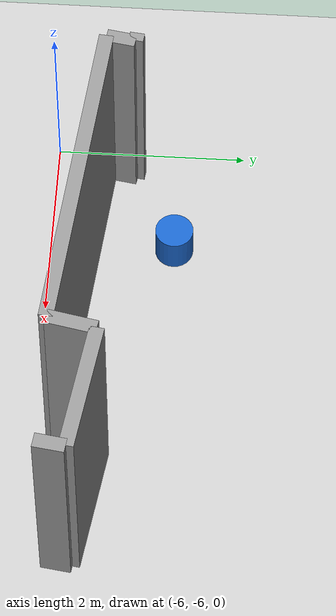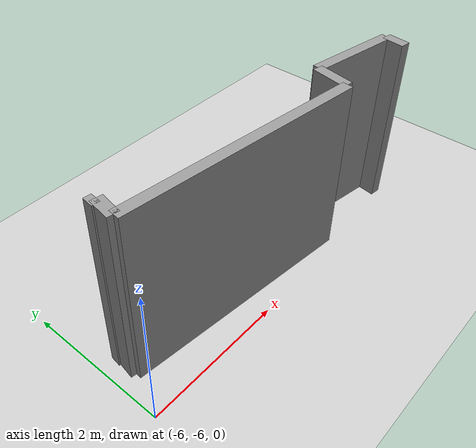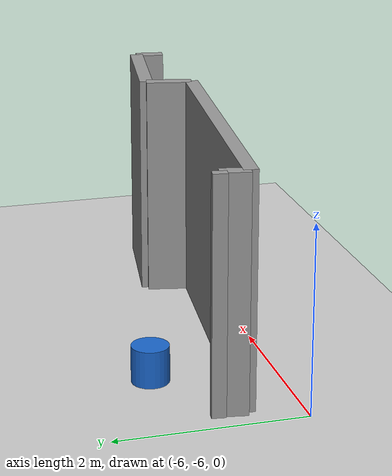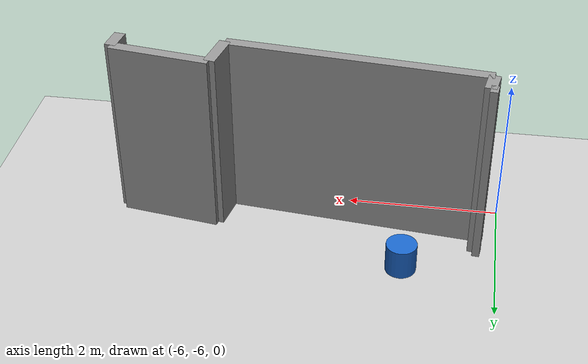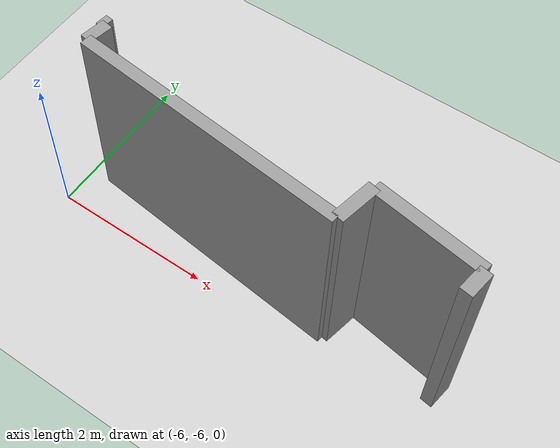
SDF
<sdf version="1.7">
 <world name="default">
  <plugin name="socnav_plugin" filename="libSocNavPlugin.so">
   <robot_name>robot</robot_name>
   <trajectory_file>/home/hunav_gz_classic_ws/src/socnav_gazebo_reproducer/SocNav3_trajectories_labeled/src3/000000952_24ba4eb4.json</trajectory_file>
  </plugin>
  <light name="sun" type="directional">
   <pose>0 0 10 0 -0 0</pose>
   <diffuse>0.8 0.8 0.8 1</diffuse>
   <specular>0.2 0.2 0.2 1</specular>
   <attenuation>
    <range>1000</range>
    <constant>0.9</constant>
    <linear>0.01</linear>
    <quadratic>0.001</quadratic>
   </attenuation>
   <direction>-0.5 0.1 -0.9</direction>
   <spot><inner_angle>0</inner_angle><outer_angle>0</outer_angle><falloff>0</falloff></spot>
  </light>
  <model name="ground_plane">
   <static>1</static>
   <link name="link">
    <collision name="collision">
     <geometry><plane><normal>0 0 1</normal><size>100 100</size></plane></geometry>
     <surface><friction><ode><mu>100</mu><mu2>50</mu2></ode></friction></surface>
    </collision>
    <visual name="visual">
     <cast_shadows>0</cast_shadows>
     <geometry><plane><normal>0 0 1</normal><size>100 100</size></plane></geometry>
     <material>
      <script><uri>file://media/materials/scripts/gazebo.material</uri><name>Gazebo/Grey</name></script>
     </material>
    </visual>
   </link>
  </model>
  <gravity>0 0 -9.8</gravity>
  <magnetic_field>6e-06 2.3e-05 -4.2e-05</magnetic_field>
  <atmosphere type="adiabatic"/>
  <physics type="ode">
   <max_step_size>0.001</max_step_size>
   <real_time_factor>1</real_time_factor>
   <real_time_update_rate>1000</real_time_update_rate>
  </physics>
  <scene><ambient>0.4 0.4 0.4 1</ambient><background>0.7 0.7 0.7 1</background><shadows>1</shadows></scene>
  <audio><device>default</device></audio>
  <spherical_coordinates>
   <surface_model>EARTH_WGS84</surface_model>
   <latitude_deg>0</latitude_deg>
   <longitude_deg>0</longitude_deg>
   <elevation>0</elevation>
   <heading_deg>0</heading_deg>
  </spherical_coordinates>
  <model name="robot">
   <pose>-4.79817352365282 -4.687665967025969 0.2 0 0 6.604905313842685e-06</pose>
   <link name="link">
    <collision name="collision">
     <geometry><cylinder><radius>0.2</radius><length>0.4</length></cylinder></geometry>
    </collision>
    <visual name="visual">
     <geometry><cylinder><radius>0.2</radius><length>0.4</length></cylinder></geometry>
     <material><ambient>0.1 0.4 0.8 1</ambient><diffuse>0.1 0.4 0.8 1</diffuse></material>
    </visual>
   </link>
  </model>
  <model name="simple_world_test">
   <link name="Wall_0">
    <collision name="Wall_0_Collision">
     <geometry><box><size>0.09812089216655524 0.15 2.5</size></box></geometry>
     <pose>0 0 1.25 0 -0 0</pose>
    </collision>
    <visual name="Wall_0_Visual">
     <pose>0 0 1.25 0 -0 0</pose>
     <geometry><box><size>0.09812089216655524 0.15 2.5</size></box></geometry>
     <material>
      <script><uri>file://media/materials/scripts/gazebo.material</uri><name>Gazebo/Grey</name></script>
      <ambient>1 1 1 1</ambient>
     </material>
     <meta><layer>0</layer></meta>
    </visual>
    <pose>-5.74949192838268 -5.131400469456677 0 0 -0 -0.12435499454676817</pose>
   </link>
   <link name="Wall_1">
    <collision name="Wall_1_Collision">
     <geometry><box><size>0.3041381265149108 0.15 2.5</size></box></geometry>
     <pose>0 0 1.25 0 -0 0</pose>
    </collision>
    <visual name="Wall_1_Visual">
     <pose>0 0 1.25 0 -0 0</pose>
     <geometry><box><size>0.3041381265149108 0.15 2.5</size></box></geometry>
     <material>
      <script><uri>file://media/materials/scripts/gazebo.material</uri><name>Gazebo/Grey</name></script>
      <ambient>1 1 1 1</ambient>
     </material>
     <meta><layer>0</layer></meta>
    </visual>
    <pose>-5.725810333112539 -5.287485668865445 0 0 -0 -1.735945004209523</pose>
   </link>
   <link name="Wall_2">
    <collision name="Wall_2_Collision">
     <geometry><box><size>3.368233958619858 0.15 2.5</size></box></geometry>
     <pose>0 0 1.25 0 -0 0</pose>
    </collision>
    <visual name="Wall_2_Visual">
     <pose>0 0 1.25 0 -0 0</pose>
     <geometry><box><size>3.368233958619858 0.15 2.5</size></box></geometry>
     <material>
      <script><uri>file://media/materials/scripts/gazebo.material</uri><name>Gazebo/Grey</name></script>
      <ambient>1 1 1 1</ambient>
     </material>
     <meta><layer>0</layer></meta>
    </visual>
    <pose>-4.07581033311254 -5.612485668865445 0 0 -0 -0.10409993810959924</pose>
   </link>
   <link name="Wall_3">
    <collision name="Wall_3_Collision">
     <geometry><box><size>0.5099019513592785 0.15 2.5</size></box></geometry>
     <pose>0 0 1.25 0 -0 0</pose>
    </collision>
    <visual name="Wall_3_Visual">
     <pose>0 0 1.25 0 -0 0</pose>
     <geometry><box><size>0.5099019513592785 0.15 2.5</size></box></geometry>
     <material>
      <script><uri>file://media/materials/scripts/gazebo.material</uri><name>Gazebo/Grey</name></script>
      <ambient>1 1 1 1</ambient>
     </material>
     <meta><layer>0</layer></meta>
    </visual>
    <pose>-2.3508103331125394 -5.537485668865445 0 0 -0 1.3734007669450157</pose>
   </link>
   <link name="Wall_4">
    <collision name="Wall_4_Collision">
     <geometry><box><size>1.3152946437965904 0.15 2.5</size></box></geometry>
     <pose>0 0 1.25 0 -0 0</pose>
    </collision>
    <visual name="Wall_4_Visual">
     <pose>0 0 1.25 0 -0 0</pose>
     <geometry><box><size>1.3152946437965904 0.15 2.5</size></box></geometry>
     <material>
      <script><uri>file://media/materials/scripts/gazebo.material</uri><name>Gazebo/Grey</name></script>
      <ambient>1 1 1 1</ambient>
     </material>
     <meta><layer>0</layer></meta>
    </visual>
    <pose>-1.6508103331125397 -5.387485668865445 0 0 -0 -0.15264932839526532</pose>
   </link>
   <link name="Wall_5">
    <collision name="Wall_5_Collision">
     <geometry><box><size>0.31384212707493436 0.15 2.5</size></box></geometry>
     <pose>0 0 1.25 0 -0 0</pose>
    </collision>
    <visual name="Wall_5_Visual">
     <pose>0 0 1.25 0 -0 0</pose>
     <geometry><box><size>0.31384212707493436 0.15 2.5</size></box></geometry>
     <material>
      <script><uri>file://media/materials/scripts/gazebo.material</uri><name>Gazebo/Grey</name></script>
      <ambient>1 1 1 1</ambient>
     </material>
     <meta><layer>0</layer></meta>
    </visual>
    <pose>-1.0230023227402092 -5.642829596259133 0 0 -0 -1.7126933813990592</pose>
   </link>
   <static>1</static>
  </model>
 </world>
</sdf>
